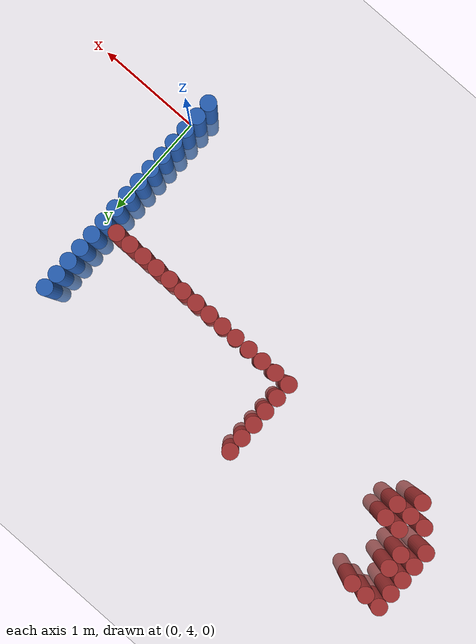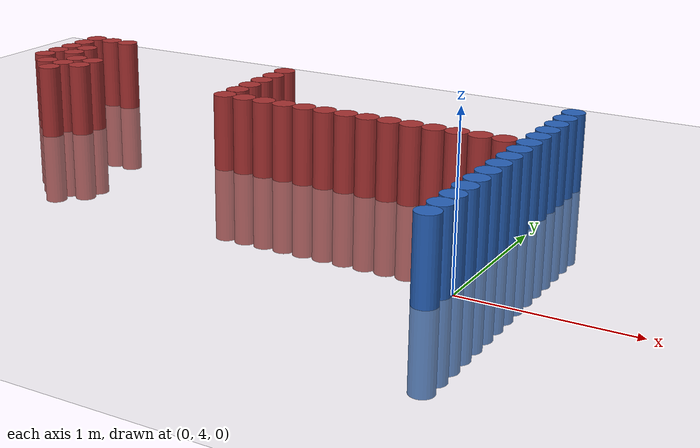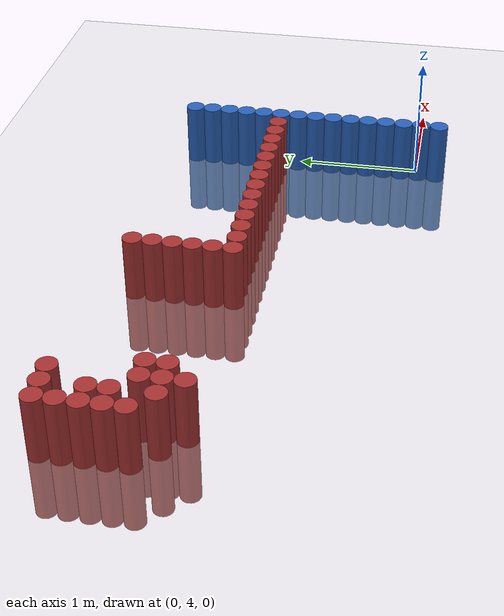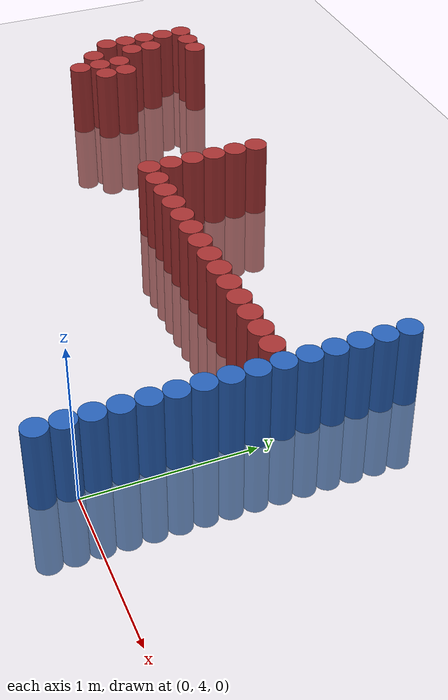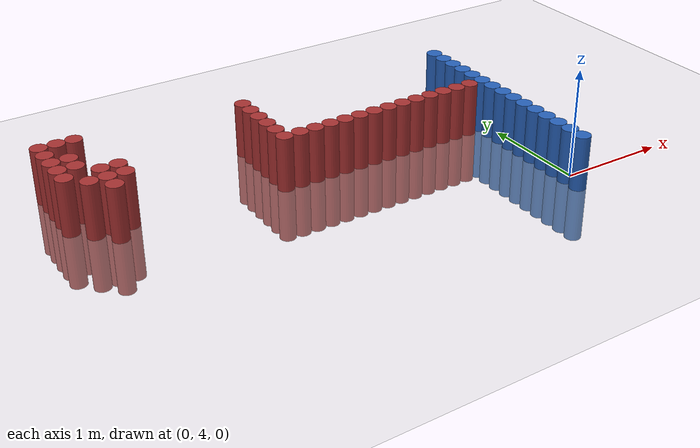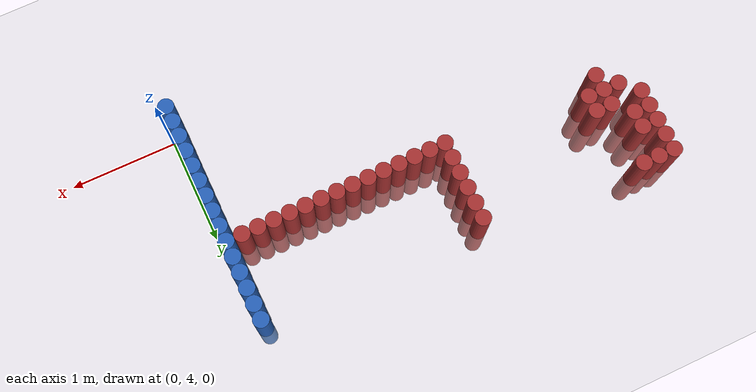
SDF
<sdf version="1.6">
 <world name="default">
  <model name="ground_plane">
   <static>1</static>
   <link name="link">
    <collision name="collision">
     <geometry><plane><normal>0 0 1</normal><size>100 100</size></plane></geometry>
     <surface><friction><ode><mu>100</mu><mu2>50</mu2></ode></friction></surface>
    </collision>
    <visual name="visual">
     <cast_shadows>0</cast_shadows>
     <geometry><plane><normal>0 0 1</normal><size>100 100</size></plane></geometry>
     <material>
      <script><uri>file://media/materials/scripts/gazebo.material</uri><name>Gazebo/Grey</name></script>
     </material>
    </visual>
   </link>
  </model>
  <model name="unit_cylinder_107">
   <static>1</static>
   <pose>-0.075000 3.825000 0.000000 0.000000 0.000000 0.000000</pose>
   <link name="link">
    <inertial>
     <mass>1</mass>
     <inertia><ixx>0.145833</ixx><ixy>0</ixy><ixz>0</ixz><iyy>0.145833</iyy><iyz>0</iyz><izz>0.125</izz></inertia>
    </inertial>
    <collision name="collision">
     <geometry><cylinder><radius>0.075000</radius><length>1</length></cylinder></geometry>
    </collision>
    <visual name="visual">
     <geometry><cylinder><radius>0.075000</radius><length>1</length></cylinder></geometry>
     <material>
      <ambient>0.152000 0.379000 0.720000 1</ambient>
      <diffuse>0.152000 0.379000 0.720000 1</diffuse>
     </material>
     <material>
      <script><name>Gazebo/Grey</name><uri>file://media/materials/scripts/gazebo.material</uri></script>
     </material>
    </visual>
   </link>
  </model>
  <model name="unit_cylinder_109">
   <static>1</static>
   <pose>-0.075000 3.975000 0.000000 0.000000 0.000000 0.000000</pose>
   <link name="link">
    <inertial>
     <mass>1</mass>
     <inertia><ixx>0.145833</ixx><ixy>0</ixy><ixz>0</ixz><iyy>0.145833</iyy><iyz>0</iyz><izz>0.125</izz></inertia>
    </inertial>
    <collision name="collision">
     <geometry><cylinder><radius>0.075000</radius><length>1</length></cylinder></geometry>
    </collision>
    <visual name="visual">
     <geometry><cylinder><radius>0.075000</radius><length>1</length></cylinder></geometry>
     <material>
      <ambient>0.152000 0.379000 0.720000 1</ambient>
      <diffuse>0.152000 0.379000 0.720000 1</diffuse>
     </material>
     <material>
      <script><name>Gazebo/Grey</name><uri>file://media/materials/scripts/gazebo.material</uri></script>
     </material>
    </visual>
   </link>
  </model>
  <model name="unit_cylinder_111">
   <static>1</static>
   <pose>-0.075000 4.125000 0.000000 0.000000 0.000000 0.000000</pose>
   <link name="link">
    <inertial>
     <mass>1</mass>
     <inertia><ixx>0.145833</ixx><ixy>0</ixy><ixz>0</ixz><iyy>0.145833</iyy><iyz>0</iyz><izz>0.125</izz></inertia>
    </inertial>
    <collision name="collision">
     <geometry><cylinder><radius>0.075000</radius><length>1</length></cylinder></geometry>
    </collision>
    <visual name="visual">
     <geometry><cylinder><radius>0.075000</radius><length>1</length></cylinder></geometry>
     <material>
      <ambient>0.152000 0.379000 0.720000 1</ambient>
      <diffuse>0.152000 0.379000 0.720000 1</diffuse>
     </material>
     <material>
      <script><name>Gazebo/Grey</name><uri>file://media/materials/scripts/gazebo.material</uri></script>
     </material>
    </visual>
   </link>
  </model>
  <model name="unit_cylinder_113">
   <static>1</static>
   <pose>-0.075000 4.275000 0.000000 0.000000 0.000000 0.000000</pose>
   <link name="link">
    <inertial>
     <mass>1</mass>
     <inertia><ixx>0.145833</ixx><ixy>0</ixy><ixz>0</ixz><iyy>0.145833</iyy><iyz>0</iyz><izz>0.125</izz></inertia>
    </inertial>
    <collision name="collision">
     <geometry><cylinder><radius>0.075000</radius><length>1</length></cylinder></geometry>
    </collision>
    <visual name="visual">
     <geometry><cylinder><radius>0.075000</radius><length>1</length></cylinder></geometry>
     <material>
      <ambient>0.152000 0.379000 0.720000 1</ambient>
      <diffuse>0.152000 0.379000 0.720000 1</diffuse>
     </material>
     <material>
      <script><name>Gazebo/Grey</name><uri>file://media/materials/scripts/gazebo.material</uri></script>
     </material>
    </visual>
   </link>
  </model>
  <model name="unit_cylinder_115">
   <static>1</static>
   <pose>-0.075000 4.425000 0.000000 0.000000 0.000000 0.000000</pose>
   <link name="link">
    <inertial>
     <mass>1</mass>
     <inertia><ixx>0.145833</ixx><ixy>0</ixy><ixz>0</ixz><iyy>0.145833</iyy><iyz>0</iyz><izz>0.125</izz></inertia>
    </inertial>
    <collision name="collision">
     <geometry><cylinder><radius>0.075000</radius><length>1</length></cylinder></geometry>
    </collision>
    <visual name="visual">
     <geometry><cylinder><radius>0.075000</radius><length>1</length></cylinder></geometry>
     <material>
      <ambient>0.152000 0.379000 0.720000 1</ambient>
      <diffuse>0.152000 0.379000 0.720000 1</diffuse>
     </material>
     <material>
      <script><name>Gazebo/Grey</name><uri>file://media/materials/scripts/gazebo.material</uri></script>
     </material>
    </visual>
   </link>
  </model>
  <model name="unit_cylinder_117">
   <static>1</static>
   <pose>-0.075000 4.575000 0.000000 0.000000 0.000000 0.000000</pose>
   <link name="link">
    <inertial>
     <mass>1</mass>
     <inertia><ixx>0.145833</ixx><ixy>0</ixy><ixz>0</ixz><iyy>0.145833</iyy><iyz>0</iyz><izz>0.125</izz></inertia>
    </inertial>
    <collision name="collision">
     <geometry><cylinder><radius>0.075000</radius><length>1</length></cylinder></geometry>
    </collision>
    <visual name="visual">
     <geometry><cylinder><radius>0.075000</radius><length>1</length></cylinder></geometry>
     <material>
      <ambient>0.152000 0.379000 0.720000 1</ambient>
      <diffuse>0.152000 0.379000 0.720000 1</diffuse>
     </material>
     <material>
      <script><name>Gazebo/Grey</name><uri>file://media/materials/scripts/gazebo.material</uri></script>
     </material>
    </visual>
   </link>
  </model>
  <model name="unit_cylinder_119">
   <static>1</static>
   <pose>-0.075000 4.725000 0.000000 0.000000 0.000000 0.000000</pose>
   <link name="link">
    <inertial>
     <mass>1</mass>
     <inertia><ixx>0.145833</ixx><ixy>0</ixy><ixz>0</ixz><iyy>0.145833</iyy><iyz>0</iyz><izz>0.125</izz></inertia>
    </inertial>
    <collision name="collision">
     <geometry><cylinder><radius>0.075000</radius><length>1</length></cylinder></geometry>
    </collision>
    <visual name="visual">
     <geometry><cylinder><radius>0.075000</radius><length>1</length></cylinder></geometry>
     <material>
      <ambient>0.152000 0.379000 0.720000 1</ambient>
      <diffuse>0.152000 0.379000 0.720000 1</diffuse>
     </material>
     <material>
      <script><name>Gazebo/Grey</name><uri>file://media/materials/scripts/gazebo.material</uri></script>
     </material>
    </visual>
   </link>
  </model>
  <model name="unit_cylinder_121">
   <static>1</static>
   <pose>-0.075000 4.875000 0.000000 0.000000 0.000000 0.000000</pose>
   <link name="link">
    <inertial>
     <mass>1</mass>
     <inertia><ixx>0.145833</ixx><ixy>0</ixy><ixz>0</ixz><iyy>0.145833</iyy><iyz>0</iyz><izz>0.125</izz></inertia>
    </inertial>
    <collision name="collision">
     <geometry><cylinder><radius>0.075000</radius><length>1</length></cylinder></geometry>
    </collision>
    <visual name="visual">
     <geometry><cylinder><radius>0.075000</radius><length>1</length></cylinder></geometry>
     <material>
      <ambient>0.152000 0.379000 0.720000 1</ambient>
      <diffuse>0.152000 0.379000 0.720000 1</diffuse>
     </material>
     <material>
      <script><name>Gazebo/Grey</name><uri>file://media/materials/scripts/gazebo.material</uri></script>
     </material>
    </visual>
   </link>
  </model>
  <model name="unit_cylinder_123">
   <static>1</static>
   <pose>-0.075000 5.025000 0.000000 0.000000 0.000000 0.000000</pose>
   <link name="link">
    <inertial>
     <mass>1</mass>
     <inertia><ixx>0.145833</ixx><ixy>0</ixy><ixz>0</ixz><iyy>0.145833</iyy><iyz>0</iyz><izz>0.125</izz></inertia>
    </inertial>
    <collision name="collision">
     <geometry><cylinder><radius>0.075000</radius><length>1</length></cylinder></geometry>
    </collision>
    <visual name="visual">
     <geometry><cylinder><radius>0.075000</radius><length>1</length></cylinder></geometry>
     <material>
      <ambient>0.152000 0.379000 0.720000 1</ambient>
      <diffuse>0.152000 0.379000 0.720000 1</diffuse>
     </material>
     <material>
      <script><name>Gazebo/Grey</name><uri>file://media/materials/scripts/gazebo.material</uri></script>
     </material>
    </visual>
   </link>
  </model>
  <model name="unit_cylinder_268">
   <static>1</static>
   <pose>-3.975000 5.475000 0.000000 0.000000 0.000000 0.000000</pose>
   <link name="link">
    <inertial>
     <mass>1</mass>
     <inertia><ixx>0.145833</ixx><ixy>0</ixy><ixz>0</ixz><iyy>0.145833</iyy><iyz>0</iyz><izz>0.125</izz></inertia>
    </inertial>
    <collision name="collision">
     <geometry><cylinder><radius>0.075000</radius><length>1</length></cylinder></geometry>
    </collision>
    <visual name="visual">
     <geometry><cylinder><radius>0.075000</radius><length>1</length></cylinder></geometry>
     <material>
      <ambient>0.648000 0.192000 0.192000 1</ambient>
      <diffuse>0.648000 0.192000 0.192000 1</diffuse>
     </material>
     <material>
      <script><name>Gazebo/Grey</name><uri>file://media/materials/scripts/gazebo.material</uri></script>
     </material>
    </visual>
   </link>
  </model>
  <model name="unit_cylinder_269">
   <static>1</static>
   <pose>-3.975000 5.625000 0.000000 0.000000 0.000000 0.000000</pose>
   <link name="link">
    <inertial>
     <mass>1</mass>
     <inertia><ixx>0.145833</ixx><ixy>0</ixy><ixz>0</ixz><iyy>0.145833</iyy><iyz>0</iyz><izz>0.125</izz></inertia>
    </inertial>
    <collision name="collision">
     <geometry><cylinder><radius>0.075000</radius><length>1</length></cylinder></geometry>
    </collision>
    <visual name="visual">
     <geometry><cylinder><radius>0.075000</radius><length>1</length></cylinder></geometry>
     <material>
      <ambient>0.648000 0.192000 0.192000 1</ambient>
      <diffuse>0.648000 0.192000 0.192000 1</diffuse>
     </material>
     <material>
      <script><name>Gazebo/Grey</name><uri>file://media/materials/scripts/gazebo.material</uri></script>
     </material>
    </visual>
   </link>
  </model>
  <model name="unit_cylinder_270">
   <static>1</static>
   <pose>-3.975000 5.775000 0.000000 0.000000 0.000000 0.000000</pose>
   <link name="link">
    <inertial>
     <mass>1</mass>
     <inertia><ixx>0.145833</ixx><ixy>0</ixy><ixz>0</ixz><iyy>0.145833</iyy><iyz>0</iyz><izz>0.125</izz></inertia>
    </inertial>
    <collision name="collision">
     <geometry><cylinder><radius>0.075000</radius><length>1</length></cylinder></geometry>
    </collision>
    <visual name="visual">
     <geometry><cylinder><radius>0.075000</radius><length>1</length></cylinder></geometry>
     <material>
      <ambient>0.648000 0.192000 0.192000 1</ambient>
      <diffuse>0.648000 0.192000 0.192000 1</diffuse>
     </material>
     <material>
      <script><name>Gazebo/Grey</name><uri>file://media/materials/scripts/gazebo.material</uri></script>
     </material>
    </visual>
   </link>
  </model>
  <model name="unit_cylinder_271">
   <static>1</static>
   <pose>-3.975000 5.925000 0.000000 0.000000 0.000000 0.000000</pose>
   <link name="link">
    <inertial>
     <mass>1</mass>
     <inertia><ixx>0.145833</ixx><ixy>0</ixy><ixz>0</ixz><iyy>0.145833</iyy><iyz>0</iyz><izz>0.125</izz></inertia>
    </inertial>
    <collision name="collision">
     <geometry><cylinder><radius>0.075000</radius><length>1</length></cylinder></geometry>
    </collision>
    <visual name="visual">
     <geometry><cylinder><radius>0.075000</radius><length>1</length></cylinder></geometry>
     <material>
      <ambient>0.648000 0.192000 0.192000 1</ambient>
      <diffuse>0.648000 0.192000 0.192000 1</diffuse>
     </material>
     <material>
      <script><name>Gazebo/Grey</name><uri>file://media/materials/scripts/gazebo.material</uri></script>
     </material>
    </visual>
   </link>
  </model>
  <model name="unit_cylinder_272">
   <static>1</static>
   <pose>-3.975000 6.075000 0.000000 0.000000 0.000000 0.000000</pose>
   <link name="link">
    <inertial>
     <mass>1</mass>
     <inertia><ixx>0.145833</ixx><ixy>0</ixy><ixz>0</ixz><iyy>0.145833</iyy><iyz>0</iyz><izz>0.125</izz></inertia>
    </inertial>
    <collision name="collision">
     <geometry><cylinder><radius>0.075000</radius><length>1</length></cylinder></geometry>
    </collision>
    <visual name="visual">
     <geometry><cylinder><radius>0.075000</radius><length>1</length></cylinder></geometry>
     <material>
      <ambient>0.648000 0.192000 0.192000 1</ambient>
      <diffuse>0.648000 0.192000 0.192000 1</diffuse>
     </material>
     <material>
      <script><name>Gazebo/Grey</name><uri>file://media/materials/scripts/gazebo.material</uri></script>
     </material>
    </visual>
   </link>
  </model>
  <model name="unit_cylinder_277">
   <static>1</static>
   <pose>-3.825000 5.325000 0.000000 0.000000 0.000000 0.000000</pose>
   <link name="link">
    <inertial>
     <mass>1</mass>
     <inertia><ixx>0.145833</ixx><ixy>0</ixy><ixz>0</ixz><iyy>0.145833</iyy><iyz>0</iyz><izz>0.125</izz></inertia>
    </inertial>
    <collision name="collision">
     <geometry><cylinder><radius>0.075000</radius><length>1</length></cylinder></geometry>
    </collision>
    <visual name="visual">
     <geometry><cylinder><radius>0.075000</radius><length>1</length></cylinder></geometry>
     <material>
      <ambient>0.648000 0.192000 0.192000 1</ambient>
      <diffuse>0.648000 0.192000 0.192000 1</diffuse>
     </material>
     <material>
      <script><name>Gazebo/Grey</name><uri>file://media/materials/scripts/gazebo.material</uri></script>
     </material>
    </visual>
   </link>
  </model>
  <model name="unit_cylinder_278">
   <static>1</static>
   <pose>-3.825000 5.625000 0.000000 0.000000 0.000000 0.000000</pose>
   <link name="link">
    <inertial>
     <mass>1</mass>
     <inertia><ixx>0.145833</ixx><ixy>0</ixy><ixz>0</ixz><iyy>0.145833</iyy><iyz>0</iyz><izz>0.125</izz></inertia>
    </inertial>
    <collision name="collision">
     <geometry><cylinder><radius>0.075000</radius><length>1</length></cylinder></geometry>
    </collision>
    <visual name="visual">
     <geometry><cylinder><radius>0.075000</radius><length>1</length></cylinder></geometry>
     <material>
      <ambient>0.648000 0.192000 0.192000 1</ambient>
      <diffuse>0.648000 0.192000 0.192000 1</diffuse>
     </material>
     <material>
      <script><name>Gazebo/Grey</name><uri>file://media/materials/scripts/gazebo.material</uri></script>
     </material>
    </visual>
   </link>
  </model>
  <model name="unit_cylinder_279">
   <static>1</static>
   <pose>-3.825000 5.775000 0.000000 0.000000 0.000000 0.000000</pose>
   <link name="link">
    <inertial>
     <mass>1</mass>
     <inertia><ixx>0.145833</ixx><ixy>0</ixy><ixz>0</ixz><iyy>0.145833</iyy><iyz>0</iyz><izz>0.125</izz></inertia>
    </inertial>
    <collision name="collision">
     <geometry><cylinder><radius>0.075000</radius><length>1</length></cylinder></geometry>
    </collision>
    <visual name="visual">
     <geometry><cylinder><radius>0.075000</radius><length>1</length></cylinder></geometry>
     <material>
      <ambient>0.648000 0.192000 0.192000 1</ambient>
      <diffuse>0.648000 0.192000 0.192000 1</diffuse>
     </material>
     <material>
      <script><name>Gazebo/Grey</name><uri>file://media/materials/scripts/gazebo.material</uri></script>
     </material>
    </visual>
   </link>
  </model>
  <model name="unit_cylinder_280">
   <static>1</static>
   <pose>-3.825000 6.075000 0.000000 0.000000 0.000000 0.000000</pose>
   <link name="link">
    <inertial>
     <mass>1</mass>
     <inertia><ixx>0.145833</ixx><ixy>0</ixy><ixz>0</ixz><iyy>0.145833</iyy><iyz>0</iyz><izz>0.125</izz></inertia>
    </inertial>
    <collision name="collision">
     <geometry><cylinder><radius>0.075000</radius><length>1</length></cylinder></geometry>
    </collision>
    <visual name="visual">
     <geometry><cylinder><radius>0.075000</radius><length>1</length></cylinder></geometry>
     <material>
      <ambient>0.648000 0.192000 0.192000 1</ambient>
      <diffuse>0.648000 0.192000 0.192000 1</diffuse>
     </material>
     <material>
      <script><name>Gazebo/Grey</name><uri>file://media/materials/scripts/gazebo.material</uri></script>
     </material>
    </visual>
   </link>
  </model>
  <model name="unit_cylinder_284">
   <static>1</static>
   <pose>-3.675000 5.175000 0.000000 0.000000 0.000000 0.000000</pose>
   <link name="link">
    <inertial>
     <mass>1</mass>
     <inertia><ixx>0.145833</ixx><ixy>0</ixy><ixz>0</ixz><iyy>0.145833</iyy><iyz>0</iyz><izz>0.125</izz></inertia>
    </inertial>
    <collision name="collision">
     <geometry><cylinder><radius>0.075000</radius><length>1</length></cylinder></geometry>
    </collision>
    <visual name="visual">
     <geometry><cylinder><radius>0.075000</radius><length>1</length></cylinder></geometry>
     <material>
      <ambient>0.648000 0.192000 0.192000 1</ambient>
      <diffuse>0.648000 0.192000 0.192000 1</diffuse>
     </material>
     <material>
      <script><name>Gazebo/Grey</name><uri>file://media/materials/scripts/gazebo.material</uri></script>
     </material>
    </visual>
   </link>
  </model>
  <model name="unit_cylinder_285">
   <static>1</static>
   <pose>-3.675000 5.325000 0.000000 0.000000 0.000000 0.000000</pose>
   <link name="link">
    <inertial>
     <mass>1</mass>
     <inertia><ixx>0.145833</ixx><ixy>0</ixy><ixz>0</ixz><iyy>0.145833</iyy><iyz>0</iyz><izz>0.125</izz></inertia>
    </inertial>
    <collision name="collision">
     <geometry><cylinder><radius>0.075000</radius><length>1</length></cylinder></geometry>
    </collision>
    <visual name="visual">
     <geometry><cylinder><radius>0.075000</radius><length>1</length></cylinder></geometry>
     <material>
      <ambient>0.648000 0.192000 0.192000 1</ambient>
      <diffuse>0.648000 0.192000 0.192000 1</diffuse>
     </material>
     <material>
      <script><name>Gazebo/Grey</name><uri>file://media/materials/scripts/gazebo.material</uri></script>
     </material>
    </visual>
   </link>
  </model>
  <model name="unit_cylinder_286">
   <static>1</static>
   <pose>-3.675000 5.475000 0.000000 0.000000 0.000000 0.000000</pose>
   <link name="link">
    <inertial>
     <mass>1</mass>
     <inertia><ixx>0.145833</ixx><ixy>0</ixy><ixz>0</ixz><iyy>0.145833</iyy><iyz>0</iyz><izz>0.125</izz></inertia>
    </inertial>
    <collision name="collision">
     <geometry><cylinder><radius>0.075000</radius><length>1</length></cylinder></geometry>
    </collision>
    <visual name="visual">
     <geometry><cylinder><radius>0.075000</radius><length>1</length></cylinder></geometry>
     <material>
      <ambient>0.648000 0.192000 0.192000 1</ambient>
      <diffuse>0.648000 0.192000 0.192000 1</diffuse>
     </material>
     <material>
      <script><name>Gazebo/Grey</name><uri>file://media/materials/scripts/gazebo.material</uri></script>
     </material>
    </visual>
   </link>
  </model>
  <model name="unit_cylinder_287">
   <static>1</static>
   <pose>-3.675000 6.075000 0.000000 0.000000 0.000000 0.000000</pose>
   <link name="link">
    <inertial>
     <mass>1</mass>
     <inertia><ixx>0.145833</ixx><ixy>0</ixy><ixz>0</ixz><iyy>0.145833</iyy><iyz>0</iyz><izz>0.125</izz></inertia>
    </inertial>
    <collision name="collision">
     <geometry><cylinder><radius>0.075000</radius><length>1</length></cylinder></geometry>
    </collision>
    <visual name="visual">
     <geometry><cylinder><radius>0.075000</radius><length>1</length></cylinder></geometry>
     <material>
      <ambient>0.648000 0.192000 0.192000 1</ambient>
      <diffuse>0.648000 0.192000 0.192000 1</diffuse>
     </material>
     <material>
      <script><name>Gazebo/Grey</name><uri>file://media/materials/scripts/gazebo.material</uri></script>
     </material>
    </visual>
   </link>
  </model>
  <model name="unit_cylinder_291">
   <static>1</static>
   <pose>-3.525000 5.325000 0.000000 0.000000 0.000000 0.000000</pose>
   <link name="link">
    <inertial>
     <mass>1</mass>
     <inertia><ixx>0.145833</ixx><ixy>0</ixy><ixz>0</ixz><iyy>0.145833</iyy><iyz>0</iyz><izz>0.125</izz></inertia>
    </inertial>
    <collision name="collision">
     <geometry><cylinder><radius>0.075000</radius><length>1</length></cylinder></geometry>
    </collision>
    <visual name="visual">
     <geometry><cylinder><radius>0.075000</radius><length>1</length></cylinder></geometry>
     <material>
      <ambient>0.648000 0.192000 0.192000 1</ambient>
      <diffuse>0.648000 0.192000 0.192000 1</diffuse>
     </material>
     <material>
      <script><name>Gazebo/Grey</name><uri>file://media/materials/scripts/gazebo.material</uri></script>
     </material>
    </visual>
   </link>
  </model>
  <model name="unit_cylinder_292">
   <static>1</static>
   <pose>-3.525000 5.475000 0.000000 0.000000 0.000000 0.000000</pose>
   <link name="link">
    <inertial>
     <mass>1</mass>
     <inertia><ixx>0.145833</ixx><ixy>0</ixy><ixz>0</ixz><iyy>0.145833</iyy><iyz>0</iyz><izz>0.125</izz></inertia>
    </inertial>
    <collision name="collision">
     <geometry><cylinder><radius>0.075000</radius><length>1</length></cylinder></geometry>
    </collision>
    <visual name="visual">
     <geometry><cylinder><radius>0.075000</radius><length>1</length></cylinder></geometry>
     <material>
      <ambient>0.648000 0.192000 0.192000 1</ambient>
      <diffuse>0.648000 0.192000 0.192000 1</diffuse>
     </material>
     <material>
      <script><name>Gazebo/Grey</name><uri>file://media/materials/scripts/gazebo.material</uri></script>
     </material>
    </visual>
   </link>
  </model>
  <model name="unit_cylinder_327">
   <static>1</static>
   <pose>-2.175000 5.175000 0.000000 0.000000 0.000000 0.000000</pose>
   <link name="link">
    <inertial>
     <mass>1</mass>
     <inertia><ixx>0.145833</ixx><ixy>0</ixy><ixz>0</ixz><iyy>0.145833</iyy><iyz>0</iyz><izz>0.125</izz></inertia>
    </inertial>
    <collision name="collision">
     <geometry><cylinder><radius>0.075000</radius><length>1</length></cylinder></geometry>
    </collision>
    <visual name="visual">
     <geometry><cylinder><radius>0.075000</radius><length>1</length></cylinder></geometry>
     <material>
      <ambient>0.648000 0.192000 0.192000 1</ambient>
      <diffuse>0.648000 0.192000 0.192000 1</diffuse>
     </material>
     <material>
      <script><name>Gazebo/Grey</name><uri>file://media/materials/scripts/gazebo.material</uri></script>
     </material>
    </visual>
   </link>
  </model>
  <model name="unit_cylinder_328">
   <static>1</static>
   <pose>-2.175000 5.325000 0.000000 0.000000 0.000000 0.000000</pose>
   <link name="link">
    <inertial>
     <mass>1</mass>
     <inertia><ixx>0.145833</ixx><ixy>0</ixy><ixz>0</ixz><iyy>0.145833</iyy><iyz>0</iyz><izz>0.125</izz></inertia>
    </inertial>
    <collision name="collision">
     <geometry><cylinder><radius>0.075000</radius><length>1</length></cylinder></geometry>
    </collision>
    <visual name="visual">
     <geometry><cylinder><radius>0.075000</radius><length>1</length></cylinder></geometry>
     <material>
      <ambient>0.648000 0.192000 0.192000 1</ambient>
      <diffuse>0.648000 0.192000 0.192000 1</diffuse>
     </material>
     <material>
      <script><name>Gazebo/Grey</name><uri>file://media/materials/scripts/gazebo.material</uri></script>
     </material>
    </visual>
   </link>
  </model>
  <model name="unit_cylinder_329">
   <static>1</static>
   <pose>-2.175000 5.475000 0.000000 0.000000 0.000000 0.000000</pose>
   <link name="link">
    <inertial>
     <mass>1</mass>
     <inertia><ixx>0.145833</ixx><ixy>0</ixy><ixz>0</ixz><iyy>0.145833</iyy><iyz>0</iyz><izz>0.125</izz></inertia>
    </inertial>
    <collision name="collision">
     <geometry><cylinder><radius>0.075000</radius><length>1</length></cylinder></geometry>
    </collision>
    <visual name="visual">
     <geometry><cylinder><radius>0.075000</radius><length>1</length></cylinder></geometry>
     <material>
      <ambient>0.648000 0.192000 0.192000 1</ambient>
      <diffuse>0.648000 0.192000 0.192000 1</diffuse>
     </material>
     <material>
      <script><name>Gazebo/Grey</name><uri>file://media/materials/scripts/gazebo.material</uri></script>
     </material>
    </visual>
   </link>
  </model>
  <model name="unit_cylinder_330">
   <static>1</static>
   <pose>-2.175000 5.625000 0.000000 0.000000 0.000000 0.000000</pose>
   <link name="link">
    <inertial>
     <mass>1</mass>
     <inertia><ixx>0.145833</ixx><ixy>0</ixy><ixz>0</ixz><iyy>0.145833</iyy><iyz>0</iyz><izz>0.125</izz></inertia>
    </inertial>
    <collision name="collision">
     <geometry><cylinder><radius>0.075000</radius><length>1</length></cylinder></geometry>
    </collision>
    <visual name="visual">
     <geometry><cylinder><radius>0.075000</radius><length>1</length></cylinder></geometry>
     <material>
      <ambient>0.648000 0.192000 0.192000 1</ambient>
      <diffuse>0.648000 0.192000 0.192000 1</diffuse>
     </material>
     <material>
      <script><name>Gazebo/Grey</name><uri>file://media/materials/scripts/gazebo.material</uri></script>
     </material>
    </visual>
   </link>
  </model>
  <model name="unit_cylinder_331">
   <static>1</static>
   <pose>-2.175000 5.775000 0.000000 0.000000 0.000000 0.000000</pose>
   <link name="link">
    <inertial>
     <mass>1</mass>
     <inertia><ixx>0.145833</ixx><ixy>0</ixy><ixz>0</ixz><iyy>0.145833</iyy><iyz>0</iyz><izz>0.125</izz></inertia>
    </inertial>
    <collision name="collision">
     <geometry><cylinder><radius>0.075000</radius><length>1</length></cylinder></geometry>
    </collision>
    <visual name="visual">
     <geometry><cylinder><radius>0.075000</radius><length>1</length></cylinder></geometry>
     <material>
      <ambient>0.648000 0.192000 0.192000 1</ambient>
      <diffuse>0.648000 0.192000 0.192000 1</diffuse>
     </material>
     <material>
      <script><name>Gazebo/Grey</name><uri>file://media/materials/scripts/gazebo.material</uri></script>
     </material>
    </visual>
   </link>
  </model>
  <model name="unit_cylinder_332">
   <static>1</static>
   <pose>-2.175000 5.925000 0.000000 0.000000 0.000000 0.000000</pose>
   <link name="link">
    <inertial>
     <mass>1</mass>
     <inertia><ixx>0.145833</ixx><ixy>0</ixy><ixz>0</ixz><iyy>0.145833</iyy><iyz>0</iyz><izz>0.125</izz></inertia>
    </inertial>
    <collision name="collision">
     <geometry><cylinder><radius>0.075000</radius><length>1</length></cylinder></geometry>
    </collision>
    <visual name="visual">
     <geometry><cylinder><radius>0.075000</radius><length>1</length></cylinder></geometry>
     <material>
      <ambient>0.648000 0.192000 0.192000 1</ambient>
      <diffuse>0.648000 0.192000 0.192000 1</diffuse>
     </material>
     <material>
      <script><name>Gazebo/Grey</name><uri>file://media/materials/scripts/gazebo.material</uri></script>
     </material>
    </visual>
   </link>
  </model>
  <model name="unit_cylinder_340">
   <static>1</static>
   <pose>-2.025000 5.175000 0.000000 0.000000 0.000000 0.000000</pose>
   <link name="link">
    <inertial>
     <mass>1</mass>
     <inertia><ixx>0.145833</ixx><ixy>0</ixy><ixz>0</ixz><iyy>0.145833</iyy><iyz>0</iyz><izz>0.125</izz></inertia>
    </inertial>
    <collision name="collision">
     <geometry><cylinder><radius>0.075000</radius><length>1</length></cylinder></geometry>
    </collision>
    <visual name="visual">
     <geometry><cylinder><radius>0.075000</radius><length>1</length></cylinder></geometry>
     <material>
      <ambient>0.648000 0.192000 0.192000 1</ambient>
      <diffuse>0.648000 0.192000 0.192000 1</diffuse>
     </material>
     <material>
      <script><name>Gazebo/Grey</name><uri>file://media/materials/scripts/gazebo.material</uri></script>
     </material>
    </visual>
   </link>
  </model>
  <model name="unit_cylinder_342">
   <static>1</static>
   <pose>-1.875000 5.175000 0.000000 0.000000 0.000000 0.000000</pose>
   <link name="link">
    <inertial>
     <mass>1</mass>
     <inertia><ixx>0.145833</ixx><ixy>0</ixy><ixz>0</ixz><iyy>0.145833</iyy><iyz>0</iyz><izz>0.125</izz></inertia>
    </inertial>
    <collision name="collision">
     <geometry><cylinder><radius>0.075000</radius><length>1</length></cylinder></geometry>
    </collision>
    <visual name="visual">
     <geometry><cylinder><radius>0.075000</radius><length>1</length></cylinder></geometry>
     <material>
      <ambient>0.648000 0.192000 0.192000 1</ambient>
      <diffuse>0.648000 0.192000 0.192000 1</diffuse>
     </material>
     <material>
      <script><name>Gazebo/Grey</name><uri>file://media/materials/scripts/gazebo.material</uri></script>
     </material>
    </visual>
   </link>
  </model>
  <model name="unit_cylinder_344">
   <static>1</static>
   <pose>-1.725000 5.175000 0.000000 0.000000 0.000000 0.000000</pose>
   <link name="link">
    <inertial>
     <mass>1</mass>
     <inertia><ixx>0.145833</ixx><ixy>0</ixy><ixz>0</ixz><iyy>0.145833</iyy><iyz>0</iyz><izz>0.125</izz></inertia>
    </inertial>
    <collision name="collision">
     <geometry><cylinder><radius>0.075000</radius><length>1</length></cylinder></geometry>
    </collision>
    <visual name="visual">
     <geometry><cylinder><radius>0.075000</radius><length>1</length></cylinder></geometry>
     <material>
      <ambient>0.648000 0.192000 0.192000 1</ambient>
      <diffuse>0.648000 0.192000 0.192000 1</diffuse>
     </material>
     <material>
      <script><name>Gazebo/Grey</name><uri>file://media/materials/scripts/gazebo.material</uri></script>
     </material>
    </visual>
   </link>
  </model>
  <model name="unit_cylinder_346">
   <static>1</static>
   <pose>-1.575000 5.175000 0.000000 0.000000 0.000000 0.000000</pose>
   <link name="link">
    <inertial>
     <mass>1</mass>
     <inertia><ixx>0.145833</ixx><ixy>0</ixy><ixz>0</ixz><iyy>0.145833</iyy><iyz>0</iyz><izz>0.125</izz></inertia>
    </inertial>
    <collision name="collision">
     <geometry><cylinder><radius>0.075000</radius><length>1</length></cylinder></geometry>
    </collision>
    <visual name="visual">
     <geometry><cylinder><radius>0.075000</radius><length>1</length></cylinder></geometry>
     <material>
      <ambient>0.648000 0.192000 0.192000 1</ambient>
      <diffuse>0.648000 0.192000 0.192000 1</diffuse>
     </material>
     <material>
      <script><name>Gazebo/Grey</name><uri>file://media/materials/scripts/gazebo.material</uri></script>
     </material>
    </visual>
   </link>
  </model>
  <model name="unit_cylinder_348">
   <static>1</static>
   <pose>-1.425000 5.175000 0.000000 0.000000 0.000000 0.000000</pose>
   <link name="link">
    <inertial>
     <mass>1</mass>
     <inertia><ixx>0.145833</ixx><ixy>0</ixy><ixz>0</ixz><iyy>0.145833</iyy><iyz>0</iyz><izz>0.125</izz></inertia>
    </inertial>
    <collision name="collision">
     <geometry><cylinder><radius>0.075000</radius><length>1</length></cylinder></geometry>
    </collision>
    <visual name="visual">
     <geometry><cylinder><radius>0.075000</radius><length>1</length></cylinder></geometry>
     <material>
      <ambient>0.648000 0.192000 0.192000 1</ambient>
      <diffuse>0.648000 0.192000 0.192000 1</diffuse>
     </material>
     <material>
      <script><name>Gazebo/Grey</name><uri>file://media/materials/scripts/gazebo.material</uri></script>
     </material>
    </visual>
   </link>
  </model>
  <model name="unit_cylinder_350">
   <static>1</static>
   <pose>-1.275000 5.175000 0.000000 0.000000 0.000000 0.000000</pose>
   <link name="link">
    <inertial>
     <mass>1</mass>
     <inertia><ixx>0.145833</ixx><ixy>0</ixy><ixz>0</ixz><iyy>0.145833</iyy><iyz>0</iyz><izz>0.125</izz></inertia>
    </inertial>
    <collision name="collision">
     <geometry><cylinder><radius>0.075000</radius><length>1</length></cylinder></geometry>
    </collision>
    <visual name="visual">
     <geometry><cylinder><radius>0.075000</radius><length>1</length></cylinder></geometry>
     <material>
      <ambient>0.648000 0.192000 0.192000 1</ambient>
      <diffuse>0.648000 0.192000 0.192000 1</diffuse>
     </material>
     <material>
      <script><name>Gazebo/Grey</name><uri>file://media/materials/scripts/gazebo.material</uri></script>
     </material>
    </visual>
   </link>
  </model>
  <model name="unit_cylinder_352">
   <static>1</static>
   <pose>-1.125000 5.175000 0.000000 0.000000 0.000000 0.000000</pose>
   <link name="link">
    <inertial>
     <mass>1</mass>
     <inertia><ixx>0.145833</ixx><ixy>0</ixy><ixz>0</ixz><iyy>0.145833</iyy><iyz>0</iyz><izz>0.125</izz></inertia>
    </inertial>
    <collision name="collision">
     <geometry><cylinder><radius>0.075000</radius><length>1</length></cylinder></geometry>
    </collision>
    <visual name="visual">
     <geometry><cylinder><radius>0.075000</radius><length>1</length></cylinder></geometry>
     <material>
      <ambient>0.648000 0.192000 0.192000 1</ambient>
      <diffuse>0.648000 0.192000 0.192000 1</diffuse>
     </material>
     <material>
      <script><name>Gazebo/Grey</name><uri>file://media/materials/scripts/gazebo.material</uri></script>
     </material>
    </visual>
   </link>
  </model>
  <model name="unit_cylinder_354">
   <static>1</static>
   <pose>-0.975000 5.175000 0.000000 0.000000 0.000000 0.000000</pose>
   <link name="link">
    <inertial>
     <mass>1</mass>
     <inertia><ixx>0.145833</ixx><ixy>0</ixy><ixz>0</ixz><iyy>0.145833</iyy><iyz>0</iyz><izz>0.125</izz></inertia>
    </inertial>
    <collision name="collision">
     <geometry><cylinder><radius>0.075000</radius><length>1</length></cylinder></geometry>
    </collision>
    <visual name="visual">
     <geometry><cylinder><radius>0.075000</radius><length>1</length></cylinder></geometry>
     <material>
      <ambient>0.648000 0.192000 0.192000 1</ambient>
      <diffuse>0.648000 0.192000 0.192000 1</diffuse>
     </material>
     <material>
      <script><name>Gazebo/Grey</name><uri>file://media/materials/scripts/gazebo.material</uri></script>
     </material>
    </visual>
   </link>
  </model>
  <model name="unit_cylinder_356">
   <static>1</static>
   <pose>-0.825000 5.175000 0.000000 0.000000 0.000000 0.000000</pose>
   <link name="link">
    <inertial>
     <mass>1</mass>
     <inertia><ixx>0.145833</ixx><ixy>0</ixy><ixz>0</ixz><iyy>0.145833</iyy><iyz>0</iyz><izz>0.125</izz></inertia>
    </inertial>
    <collision name="collision">
     <geometry><cylinder><radius>0.075000</radius><length>1</length></cylinder></geometry>
    </collision>
    <visual name="visual">
     <geometry><cylinder><radius>0.075000</radius><length>1</length></cylinder></geometry>
     <material>
      <ambient>0.648000 0.192000 0.192000 1</ambient>
      <diffuse>0.648000 0.192000 0.192000 1</diffuse>
     </material>
     <material>
      <script><name>Gazebo/Grey</name><uri>file://media/materials/scripts/gazebo.material</uri></script>
     </material>
    </visual>
   </link>
  </model>
  <model name="unit_cylinder_358">
   <static>1</static>
   <pose>-0.675000 5.175000 0.000000 0.000000 0.000000 0.000000</pose>
   <link name="link">
    <inertial>
     <mass>1</mass>
     <inertia><ixx>0.145833</ixx><ixy>0</ixy><ixz>0</ixz><iyy>0.145833</iyy><iyz>0</iyz><izz>0.125</izz></inertia>
    </inertial>
    <collision name="collision">
     <geometry><cylinder><radius>0.075000</radius><length>1</length></cylinder></geometry>
    </collision>
    <visual name="visual">
     <geometry><cylinder><radius>0.075000</radius><length>1</length></cylinder></geometry>
     <material>
      <ambient>0.648000 0.192000 0.192000 1</ambient>
      <diffuse>0.648000 0.192000 0.192000 1</diffuse>
     </material>
     <material>
      <script><name>Gazebo/Grey</name><uri>file://media/materials/scripts/gazebo.material</uri></script>
     </material>
    </visual>
   </link>
  </model>
  <model name="unit_cylinder_360">
   <static>1</static>
   <pose>-0.525000 5.175000 0.000000 0.000000 0.000000 0.000000</pose>
   <link name="link">
    <inertial>
     <mass>1</mass>
     <inertia><ixx>0.145833</ixx><ixy>0</ixy><ixz>0</ixz><iyy>0.145833</iyy><iyz>0</iyz><izz>0.125</izz></inertia>
    </inertial>
    <collision name="collision">
     <geometry><cylinder><radius>0.075000</radius><length>1</length></cylinder></geometry>
    </collision>
    <visual name="visual">
     <geometry><cylinder><radius>0.075000</radius><length>1</length></cylinder></geometry>
     <material>
      <ambient>0.648000 0.192000 0.192000 1</ambient>
      <diffuse>0.648000 0.192000 0.192000 1</diffuse>
     </material>
     <material>
      <script><name>Gazebo/Grey</name><uri>file://media/materials/scripts/gazebo.material</uri></script>
     </material>
    </visual>
   </link>
  </model>
  <model name="unit_cylinder_362">
   <static>1</static>
   <pose>-0.375000 5.175000 0.000000 0.000000 0.000000 0.000000</pose>
   <link name="link">
    <inertial>
     <mass>1</mass>
     <inertia><ixx>0.145833</ixx><ixy>0</ixy><ixz>0</ixz><iyy>0.145833</iyy><iyz>0</iyz><izz>0.125</izz></inertia>
    </inertial>
    <collision name="collision">
     <geometry><cylinder><radius>0.075000</radius><length>1</length></cylinder></geometry>
    </collision>
    <visual name="visual">
     <geometry><cylinder><radius>0.075000</radius><length>1</length></cylinder></geometry>
     <material>
      <ambient>0.648000 0.192000 0.192000 1</ambient>
      <diffuse>0.648000 0.192000 0.192000 1</diffuse>
     </material>
     <material>
      <script><name>Gazebo/Grey</name><uri>file://media/materials/scripts/gazebo.material</uri></script>
     </material>
    </visual>
   </link>
  </model>
  <model name="unit_cylinder_364">
   <static>1</static>
   <pose>-0.225000 5.175000 0.000000 0.000000 0.000000 0.000000</pose>
   <link name="link">
    <inertial>
     <mass>1</mass>
     <inertia><ixx>0.145833</ixx><ixy>0</ixy><ixz>0</ixz><iyy>0.145833</iyy><iyz>0</iyz><izz>0.125</izz></inertia>
    </inertial>
    <collision name="collision">
     <geometry><cylinder><radius>0.075000</radius><length>1</length></cylinder></geometry>
    </collision>
    <visual name="visual">
     <geometry><cylinder><radius>0.075000</radius><length>1</length></cylinder></geometry>
     <material>
      <ambient>0.648000 0.192000 0.192000 1</ambient>
      <diffuse>0.648000 0.192000 0.192000 1</diffuse>
     </material>
     <material>
      <script><name>Gazebo/Grey</name><uri>file://media/materials/scripts/gazebo.material</uri></script>
     </material>
    </visual>
   </link>
  </model>
  <model name="unit_cylinder_366">
   <static>1</static>
   <pose>-0.075000 5.175000 0.000000 0.000000 0.000000 0.000000</pose>
   <link name="link">
    <inertial>
     <mass>1</mass>
     <inertia><ixx>0.145833</ixx><ixy>0</ixy><ixz>0</ixz><iyy>0.145833</iyy><iyz>0</iyz><izz>0.125</izz></inertia>
    </inertial>
    <collision name="collision">
     <geometry><cylinder><radius>0.075000</radius><length>1</length></cylinder></geometry>
    </collision>
    <visual name="visual">
     <geometry><cylinder><radius>0.075000</radius><length>1</length></cylinder></geometry>
     <material>
      <ambient>0.152000 0.379000 0.720000 1</ambient>
      <diffuse>0.152000 0.379000 0.720000 1</diffuse>
     </material>
     <material>
      <script><name>Gazebo/Grey</name><uri>file://media/materials/scripts/gazebo.material</uri></script>
     </material>
    </visual>
   </link>
  </model>
  <model name="unit_cylinder_367">
   <static>1</static>
   <pose>-0.075000 5.325000 0.000000 0.000000 0.000000 0.000000</pose>
   <link name="link">
    <inertial>
     <mass>1</mass>
     <inertia><ixx>0.145833</ixx><ixy>0</ixy><ixz>0</ixz><iyy>0.145833</iyy><iyz>0</iyz><izz>0.125</izz></inertia>
    </inertial>
    <collision name="collision">
     <geometry><cylinder><radius>0.075000</radius><length>1</length></cylinder></geometry>
    </collision>
    <visual name="visual">
     <geometry><cylinder><radius>0.075000</radius><length>1</length></cylinder></geometry>
     <material>
      <ambient>0.152000 0.379000 0.720000 1</ambient>
      <diffuse>0.152000 0.379000 0.720000 1</diffuse>
     </material>
     <material>
      <script><name>Gazebo/Grey</name><uri>file://media/materials/scripts/gazebo.material</uri></script>
     </material>
    </visual>
   </link>
  </model>
  <model name="unit_cylinder_368">
   <static>1</static>
   <pose>-0.075000 5.475000 0.000000 0.000000 0.000000 0.000000</pose>
   <link name="link">
    <inertial>
     <mass>1</mass>
     <inertia><ixx>0.145833</ixx><ixy>0</ixy><ixz>0</ixz><iyy>0.145833</iyy><iyz>0</iyz><izz>0.125</izz></inertia>
    </inertial>
    <collision name="collision">
     <geometry><cylinder><radius>0.075000</radius><length>1</length></cylinder></geometry>
    </collision>
    <visual name="visual">
     <geometry><cylinder><radius>0.075000</radius><length>1</length></cylinder></geometry>
     <material>
      <ambient>0.152000 0.379000 0.720000 1</ambient>
      <diffuse>0.152000 0.379000 0.720000 1</diffuse>
     </material>
     <material>
      <script><name>Gazebo/Grey</name><uri>file://media/materials/scripts/gazebo.material</uri></script>
     </material>
    </visual>
   </link>
  </model>
  <model name="unit_cylinder_369">
   <static>1</static>
   <pose>-0.075000 5.625000 0.000000 0.000000 0.000000 0.000000</pose>
   <link name="link">
    <inertial>
     <mass>1</mass>
     <inertia><ixx>0.145833</ixx><ixy>0</ixy><ixz>0</ixz><iyy>0.145833</iyy><iyz>0</iyz><izz>0.125</izz></inertia>
    </inertial>
    <collision name="collision">
     <geometry><cylinder><radius>0.075000</radius><length>1</length></cylinder></geometry>
    </collision>
    <visual name="visual">
     <geometry><cylinder><radius>0.075000</radius><length>1</length></cylinder></geometry>
     <material>
      <ambient>0.152000 0.379000 0.720000 1</ambient>
      <diffuse>0.152000 0.379000 0.720000 1</diffuse>
     </material>
     <material>
      <script><name>Gazebo/Grey</name><uri>file://media/materials/scripts/gazebo.material</uri></script>
     </material>
    </visual>
   </link>
  </model>
  <model name="unit_cylinder_370">
   <static>1</static>
   <pose>-0.075000 5.775000 0.000000 0.000000 0.000000 0.000000</pose>
   <link name="link">
    <inertial>
     <mass>1</mass>
     <inertia><ixx>0.145833</ixx><ixy>0</ixy><ixz>0</ixz><iyy>0.145833</iyy><iyz>0</iyz><izz>0.125</izz></inertia>
    </inertial>
    <collision name="collision">
     <geometry><cylinder><radius>0.075000</radius><length>1</length></cylinder></geometry>
    </collision>
    <visual name="visual">
     <geometry><cylinder><radius>0.075000</radius><length>1</length></cylinder></geometry>
     <material>
      <ambient>0.152000 0.379000 0.720000 1</ambient>
      <diffuse>0.152000 0.379000 0.720000 1</diffuse>
     </material>
     <material>
      <script><name>Gazebo/Grey</name><uri>file://media/materials/scripts/gazebo.material</uri></script>
     </material>
    </visual>
   </link>
  </model>
  <model name="unit_cylinder_371">
   <static>1</static>
   <pose>-0.075000 5.925000 0.000000 0.000000 0.000000 0.000000</pose>
   <link name="link">
    <inertial>
     <mass>1</mass>
     <inertia><ixx>0.145833</ixx><ixy>0</ixy><ixz>0</ixz><iyy>0.145833</iyy><iyz>0</iyz><izz>0.125</izz></inertia>
    </inertial>
    <collision name="collision">
     <geometry><cylinder><radius>0.075000</radius><length>1</length></cylinder></geometry>
    </collision>
    <visual name="visual">
     <geometry><cylinder><radius>0.075000</radius><length>1</length></cylinder></geometry>
     <material>
      <ambient>0.152000 0.379000 0.720000 1</ambient>
      <diffuse>0.152000 0.379000 0.720000 1</diffuse>
     </material>
     <material>
      <script><name>Gazebo/Grey</name><uri>file://media/materials/scripts/gazebo.material</uri></script>
     </material>
    </visual>
   </link>
  </model>
 </world>
</sdf>
